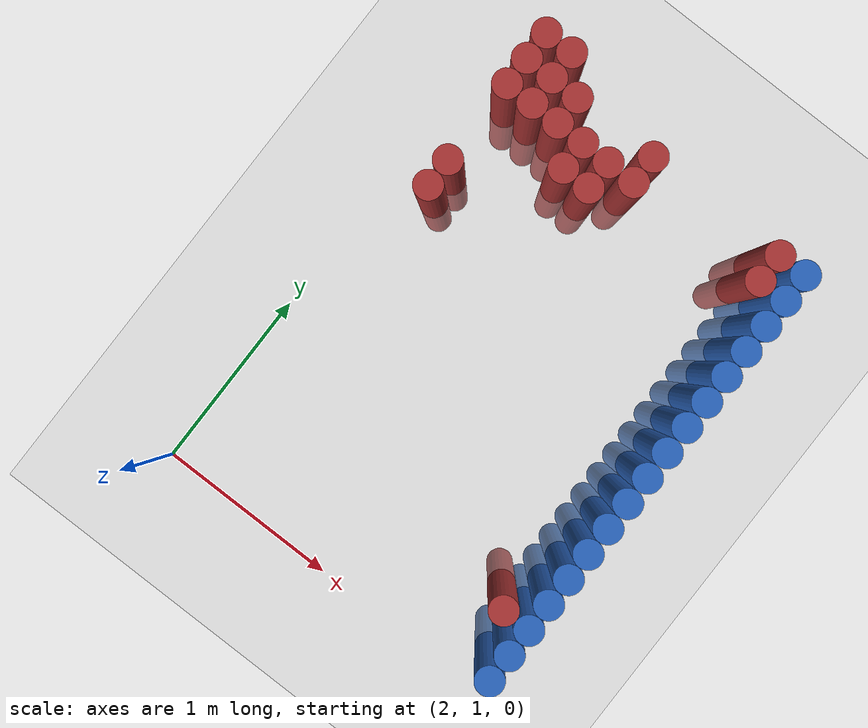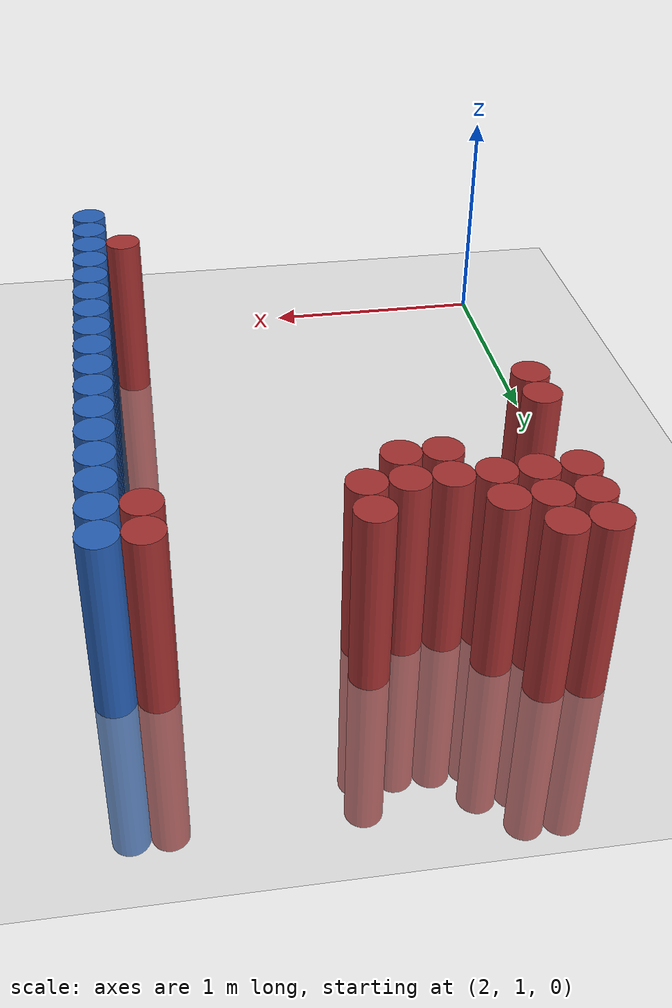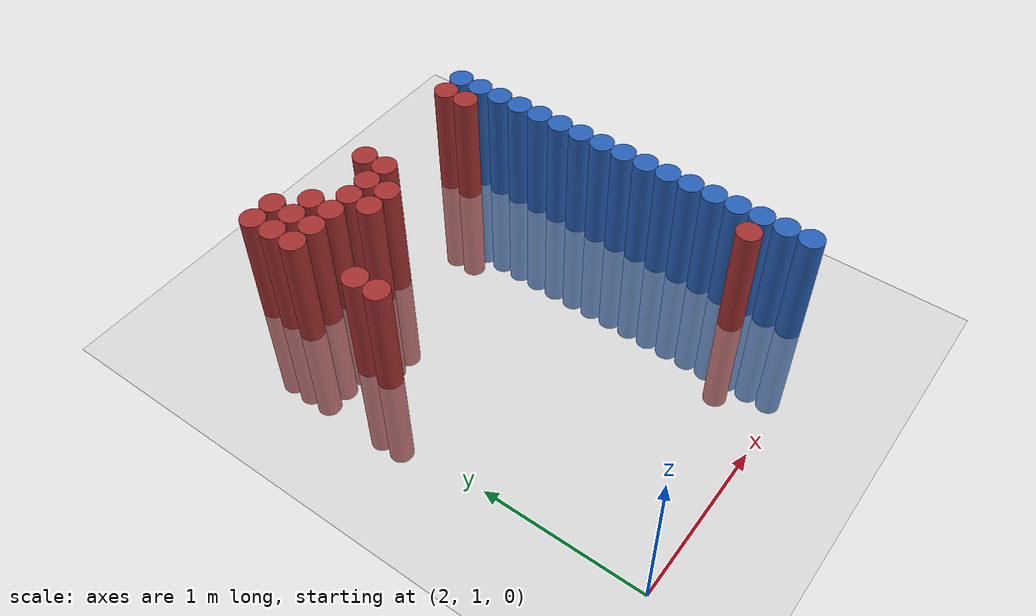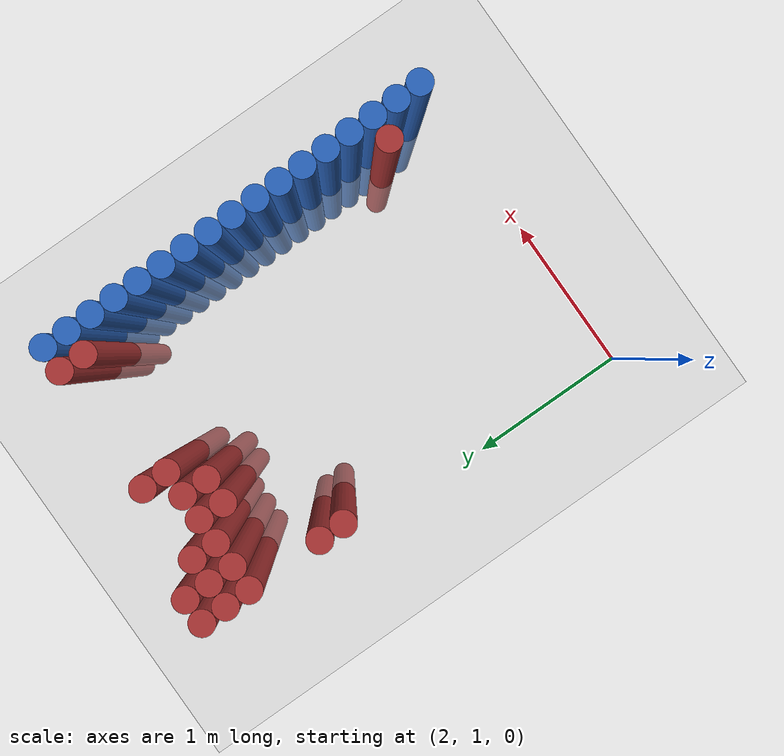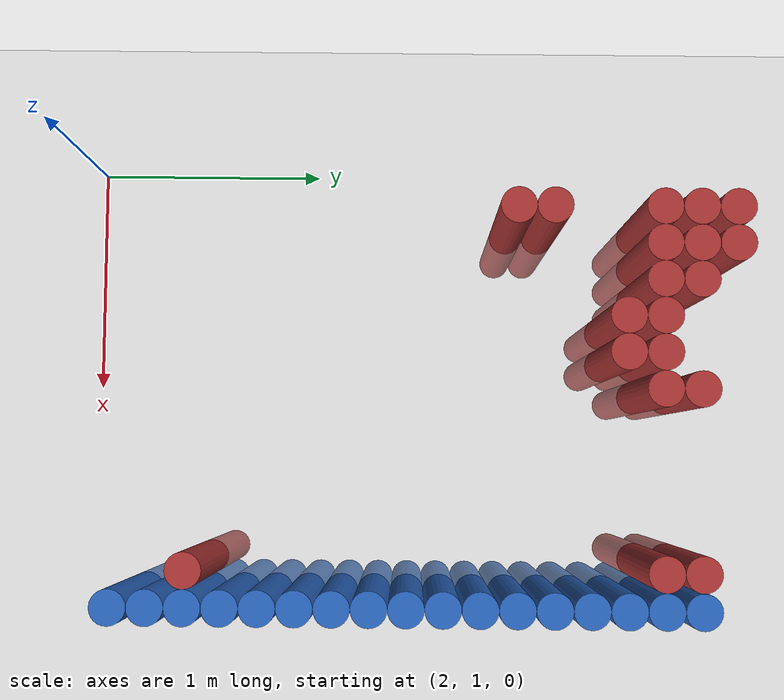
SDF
<sdf version="1.6">
 <world name="default">
  <model name="ground_plane">
   <static>1</static>
   <link name="link">
    <collision name="collision">
     <geometry><plane><normal>0 0 1</normal><size>100 100</size></plane></geometry>
     <surface><friction><ode><mu>100</mu><mu2>50</mu2></ode></friction></surface>
    </collision>
    <visual name="visual">
     <cast_shadows>0</cast_shadows>
     <geometry><plane><normal>0 0 1</normal><size>100 100</size></plane></geometry>
     <material>
      <script><uri>file://media/materials/scripts/gazebo.material</uri><name>Gazebo/Grey</name></script>
     </material>
    </visual>
   </link>
  </model>
  <model name="unit_cylinder_130">
   <static>1</static>
   <pose>3.925000 1.225000 0.000000 0.000000 0.000000 0.000000</pose>
   <link name="link">
    <inertial>
     <mass>1</mass>
     <inertia><ixx>0.145833</ixx><ixy>0</ixy><ixz>0</ixz><iyy>0.145833</iyy><iyz>0</iyz><izz>0.125</izz></inertia>
    </inertial>
    <collision name="collision">
     <geometry><cylinder><radius>0.075000</radius><length>1.5</length></cylinder></geometry>
    </collision>
    <visual name="visual">
     <geometry><cylinder><radius>0.075000</radius><length>1.5</length></cylinder></geometry>
     <material>
      <ambient>0.152000 0.379000 0.720000 1</ambient>
      <diffuse>0.152000 0.379000 0.720000 1</diffuse>
     </material>
     <material>
      <script><name>Gazebo/Grey</name><uri>file://media/materials/scripts/gazebo.material</uri></script>
     </material>
    </visual>
   </link>
  </model>
  <model name="unit_cylinder_132">
   <static>1</static>
   <pose>3.925000 1.375000 0.000000 0.000000 0.000000 0.000000</pose>
   <link name="link">
    <inertial>
     <mass>1</mass>
     <inertia><ixx>0.145833</ixx><ixy>0</ixy><ixz>0</ixz><iyy>0.145833</iyy><iyz>0</iyz><izz>0.125</izz></inertia>
    </inertial>
    <collision name="collision">
     <geometry><cylinder><radius>0.075000</radius><length>1.5</length></cylinder></geometry>
    </collision>
    <visual name="visual">
     <geometry><cylinder><radius>0.075000</radius><length>1.5</length></cylinder></geometry>
     <material>
      <ambient>0.152000 0.379000 0.720000 1</ambient>
      <diffuse>0.152000 0.379000 0.720000 1</diffuse>
     </material>
     <material>
      <script><name>Gazebo/Grey</name><uri>file://media/materials/scripts/gazebo.material</uri></script>
     </material>
    </visual>
   </link>
  </model>
  <model name="unit_cylinder_134">
   <static>1</static>
   <pose>3.925000 1.525000 0.000000 0.000000 0.000000 0.000000</pose>
   <link name="link">
    <inertial>
     <mass>1</mass>
     <inertia><ixx>0.145833</ixx><ixy>0</ixy><ixz>0</ixz><iyy>0.145833</iyy><iyz>0</iyz><izz>0.125</izz></inertia>
    </inertial>
    <collision name="collision">
     <geometry><cylinder><radius>0.075000</radius><length>1.5</length></cylinder></geometry>
    </collision>
    <visual name="visual">
     <geometry><cylinder><radius>0.075000</radius><length>1.5</length></cylinder></geometry>
     <material>
      <ambient>0.152000 0.379000 0.720000 1</ambient>
      <diffuse>0.152000 0.379000 0.720000 1</diffuse>
     </material>
     <material>
      <script><name>Gazebo/Grey</name><uri>file://media/materials/scripts/gazebo.material</uri></script>
     </material>
    </visual>
   </link>
  </model>
  <model name="unit_cylinder_136">
   <static>1</static>
   <pose>3.925000 1.675000 0.000000 0.000000 0.000000 0.000000</pose>
   <link name="link">
    <inertial>
     <mass>1</mass>
     <inertia><ixx>0.145833</ixx><ixy>0</ixy><ixz>0</ixz><iyy>0.145833</iyy><iyz>0</iyz><izz>0.125</izz></inertia>
    </inertial>
    <collision name="collision">
     <geometry><cylinder><radius>0.075000</radius><length>1.5</length></cylinder></geometry>
    </collision>
    <visual name="visual">
     <geometry><cylinder><radius>0.075000</radius><length>1.5</length></cylinder></geometry>
     <material>
      <ambient>0.152000 0.379000 0.720000 1</ambient>
      <diffuse>0.152000 0.379000 0.720000 1</diffuse>
     </material>
     <material>
      <script><name>Gazebo/Grey</name><uri>file://media/materials/scripts/gazebo.material</uri></script>
     </material>
    </visual>
   </link>
  </model>
  <model name="unit_cylinder_138">
   <static>1</static>
   <pose>3.925000 1.825000 0.000000 0.000000 0.000000 0.000000</pose>
   <link name="link">
    <inertial>
     <mass>1</mass>
     <inertia><ixx>0.145833</ixx><ixy>0</ixy><ixz>0</ixz><iyy>0.145833</iyy><iyz>0</iyz><izz>0.125</izz></inertia>
    </inertial>
    <collision name="collision">
     <geometry><cylinder><radius>0.075000</radius><length>1.5</length></cylinder></geometry>
    </collision>
    <visual name="visual">
     <geometry><cylinder><radius>0.075000</radius><length>1.5</length></cylinder></geometry>
     <material>
      <ambient>0.152000 0.379000 0.720000 1</ambient>
      <diffuse>0.152000 0.379000 0.720000 1</diffuse>
     </material>
     <material>
      <script><name>Gazebo/Grey</name><uri>file://media/materials/scripts/gazebo.material</uri></script>
     </material>
    </visual>
   </link>
  </model>
  <model name="unit_cylinder_140">
   <static>1</static>
   <pose>3.925000 1.975000 0.000000 0.000000 0.000000 0.000000</pose>
   <link name="link">
    <inertial>
     <mass>1</mass>
     <inertia><ixx>0.145833</ixx><ixy>0</ixy><ixz>0</ixz><iyy>0.145833</iyy><iyz>0</iyz><izz>0.125</izz></inertia>
    </inertial>
    <collision name="collision">
     <geometry><cylinder><radius>0.075000</radius><length>1.5</length></cylinder></geometry>
    </collision>
    <visual name="visual">
     <geometry><cylinder><radius>0.075000</radius><length>1.5</length></cylinder></geometry>
     <material>
      <ambient>0.152000 0.379000 0.720000 1</ambient>
      <diffuse>0.152000 0.379000 0.720000 1</diffuse>
     </material>
     <material>
      <script><name>Gazebo/Grey</name><uri>file://media/materials/scripts/gazebo.material</uri></script>
     </material>
    </visual>
   </link>
  </model>
  <model name="unit_cylinder_142">
   <static>1</static>
   <pose>3.925000 2.125000 0.000000 0.000000 0.000000 0.000000</pose>
   <link name="link">
    <inertial>
     <mass>1</mass>
     <inertia><ixx>0.145833</ixx><ixy>0</ixy><ixz>0</ixz><iyy>0.145833</iyy><iyz>0</iyz><izz>0.125</izz></inertia>
    </inertial>
    <collision name="collision">
     <geometry><cylinder><radius>0.075000</radius><length>1.5</length></cylinder></geometry>
    </collision>
    <visual name="visual">
     <geometry><cylinder><radius>0.075000</radius><length>1.5</length></cylinder></geometry>
     <material>
      <ambient>0.152000 0.379000 0.720000 1</ambient>
      <diffuse>0.152000 0.379000 0.720000 1</diffuse>
     </material>
     <material>
      <script><name>Gazebo/Grey</name><uri>file://media/materials/scripts/gazebo.material</uri></script>
     </material>
    </visual>
   </link>
  </model>
  <model name="unit_cylinder_144">
   <static>1</static>
   <pose>3.925000 2.275000 0.000000 0.000000 0.000000 0.000000</pose>
   <link name="link">
    <inertial>
     <mass>1</mass>
     <inertia><ixx>0.145833</ixx><ixy>0</ixy><ixz>0</ixz><iyy>0.145833</iyy><iyz>0</iyz><izz>0.125</izz></inertia>
    </inertial>
    <collision name="collision">
     <geometry><cylinder><radius>0.075000</radius><length>1.5</length></cylinder></geometry>
    </collision>
    <visual name="visual">
     <geometry><cylinder><radius>0.075000</radius><length>1.5</length></cylinder></geometry>
     <material>
      <ambient>0.152000 0.379000 0.720000 1</ambient>
      <diffuse>0.152000 0.379000 0.720000 1</diffuse>
     </material>
     <material>
      <script><name>Gazebo/Grey</name><uri>file://media/materials/scripts/gazebo.material</uri></script>
     </material>
    </visual>
   </link>
  </model>
  <model name="unit_cylinder_146">
   <static>1</static>
   <pose>3.925000 2.425000 0.000000 0.000000 0.000000 0.000000</pose>
   <link name="link">
    <inertial>
     <mass>1</mass>
     <inertia><ixx>0.145833</ixx><ixy>0</ixy><ixz>0</ixz><iyy>0.145833</iyy><iyz>0</iyz><izz>0.125</izz></inertia>
    </inertial>
    <collision name="collision">
     <geometry><cylinder><radius>0.075000</radius><length>1.5</length></cylinder></geometry>
    </collision>
    <visual name="visual">
     <geometry><cylinder><radius>0.075000</radius><length>1.5</length></cylinder></geometry>
     <material>
      <ambient>0.152000 0.379000 0.720000 1</ambient>
      <diffuse>0.152000 0.379000 0.720000 1</diffuse>
     </material>
     <material>
      <script><name>Gazebo/Grey</name><uri>file://media/materials/scripts/gazebo.material</uri></script>
     </material>
    </visual>
   </link>
  </model>
  <model name="unit_cylinder_148">
   <static>1</static>
   <pose>3.925000 2.575000 0.000000 0.000000 0.000000 0.000000</pose>
   <link name="link">
    <inertial>
     <mass>1</mass>
     <inertia><ixx>0.145833</ixx><ixy>0</ixy><ixz>0</ixz><iyy>0.145833</iyy><iyz>0</iyz><izz>0.125</izz></inertia>
    </inertial>
    <collision name="collision">
     <geometry><cylinder><radius>0.075000</radius><length>1.5</length></cylinder></geometry>
    </collision>
    <visual name="visual">
     <geometry><cylinder><radius>0.075000</radius><length>1.5</length></cylinder></geometry>
     <material>
      <ambient>0.152000 0.379000 0.720000 1</ambient>
      <diffuse>0.152000 0.379000 0.720000 1</diffuse>
     </material>
     <material>
      <script><name>Gazebo/Grey</name><uri>file://media/materials/scripts/gazebo.material</uri></script>
     </material>
    </visual>
   </link>
  </model>
  <model name="unit_cylinder_150">
   <static>1</static>
   <pose>3.925000 2.725000 0.000000 0.000000 0.000000 0.000000</pose>
   <link name="link">
    <inertial>
     <mass>1</mass>
     <inertia><ixx>0.145833</ixx><ixy>0</ixy><ixz>0</ixz><iyy>0.145833</iyy><iyz>0</iyz><izz>0.125</izz></inertia>
    </inertial>
    <collision name="collision">
     <geometry><cylinder><radius>0.075000</radius><length>1.5</length></cylinder></geometry>
    </collision>
    <visual name="visual">
     <geometry><cylinder><radius>0.075000</radius><length>1.5</length></cylinder></geometry>
     <material>
      <ambient>0.152000 0.379000 0.720000 1</ambient>
      <diffuse>0.152000 0.379000 0.720000 1</diffuse>
     </material>
     <material>
      <script><name>Gazebo/Grey</name><uri>file://media/materials/scripts/gazebo.material</uri></script>
     </material>
    </visual>
   </link>
  </model>
  <model name="unit_cylinder_152">
   <static>1</static>
   <pose>3.925000 2.875000 0.000000 0.000000 0.000000 0.000000</pose>
   <link name="link">
    <inertial>
     <mass>1</mass>
     <inertia><ixx>0.145833</ixx><ixy>0</ixy><ixz>0</ixz><iyy>0.145833</iyy><iyz>0</iyz><izz>0.125</izz></inertia>
    </inertial>
    <collision name="collision">
     <geometry><cylinder><radius>0.075000</radius><length>1.5</length></cylinder></geometry>
    </collision>
    <visual name="visual">
     <geometry><cylinder><radius>0.075000</radius><length>1.5</length></cylinder></geometry>
     <material>
      <ambient>0.152000 0.379000 0.720000 1</ambient>
      <diffuse>0.152000 0.379000 0.720000 1</diffuse>
     </material>
     <material>
      <script><name>Gazebo/Grey</name><uri>file://media/materials/scripts/gazebo.material</uri></script>
     </material>
    </visual>
   </link>
  </model>
  <model name="unit_cylinder_154">
   <static>1</static>
   <pose>3.925000 3.025000 0.000000 0.000000 0.000000 0.000000</pose>
   <link name="link">
    <inertial>
     <mass>1</mass>
     <inertia><ixx>0.145833</ixx><ixy>0</ixy><ixz>0</ixz><iyy>0.145833</iyy><iyz>0</iyz><izz>0.125</izz></inertia>
    </inertial>
    <collision name="collision">
     <geometry><cylinder><radius>0.075000</radius><length>1.5</length></cylinder></geometry>
    </collision>
    <visual name="visual">
     <geometry><cylinder><radius>0.075000</radius><length>1.5</length></cylinder></geometry>
     <material>
      <ambient>0.152000 0.379000 0.720000 1</ambient>
      <diffuse>0.152000 0.379000 0.720000 1</diffuse>
     </material>
     <material>
      <script><name>Gazebo/Grey</name><uri>file://media/materials/scripts/gazebo.material</uri></script>
     </material>
    </visual>
   </link>
  </model>
  <model name="unit_cylinder_156">
   <static>1</static>
   <pose>3.925000 3.175000 0.000000 0.000000 0.000000 0.000000</pose>
   <link name="link">
    <inertial>
     <mass>1</mass>
     <inertia><ixx>0.145833</ixx><ixy>0</ixy><ixz>0</ixz><iyy>0.145833</iyy><iyz>0</iyz><izz>0.125</izz></inertia>
    </inertial>
    <collision name="collision">
     <geometry><cylinder><radius>0.075000</radius><length>1.5</length></cylinder></geometry>
    </collision>
    <visual name="visual">
     <geometry><cylinder><radius>0.075000</radius><length>1.5</length></cylinder></geometry>
     <material>
      <ambient>0.152000 0.379000 0.720000 1</ambient>
      <diffuse>0.152000 0.379000 0.720000 1</diffuse>
     </material>
     <material>
      <script><name>Gazebo/Grey</name><uri>file://media/materials/scripts/gazebo.material</uri></script>
     </material>
    </visual>
   </link>
  </model>
  <model name="unit_cylinder_158">
   <static>1</static>
   <pose>3.925000 3.325000 0.000000 0.000000 0.000000 0.000000</pose>
   <link name="link">
    <inertial>
     <mass>1</mass>
     <inertia><ixx>0.145833</ixx><ixy>0</ixy><ixz>0</ixz><iyy>0.145833</iyy><iyz>0</iyz><izz>0.125</izz></inertia>
    </inertial>
    <collision name="collision">
     <geometry><cylinder><radius>0.075000</radius><length>1.5</length></cylinder></geometry>
    </collision>
    <visual name="visual">
     <geometry><cylinder><radius>0.075000</radius><length>1.5</length></cylinder></geometry>
     <material>
      <ambient>0.152000 0.379000 0.720000 1</ambient>
      <diffuse>0.152000 0.379000 0.720000 1</diffuse>
     </material>
     <material>
      <script><name>Gazebo/Grey</name><uri>file://media/materials/scripts/gazebo.material</uri></script>
     </material>
    </visual>
   </link>
  </model>
  <model name="unit_cylinder_160">
   <static>1</static>
   <pose>3.925000 3.475000 0.000000 0.000000 0.000000 0.000000</pose>
   <link name="link">
    <inertial>
     <mass>1</mass>
     <inertia><ixx>0.145833</ixx><ixy>0</ixy><ixz>0</ixz><iyy>0.145833</iyy><iyz>0</iyz><izz>0.125</izz></inertia>
    </inertial>
    <collision name="collision">
     <geometry><cylinder><radius>0.075000</radius><length>1.5</length></cylinder></geometry>
    </collision>
    <visual name="visual">
     <geometry><cylinder><radius>0.075000</radius><length>1.5</length></cylinder></geometry>
     <material>
      <ambient>0.152000 0.379000 0.720000 1</ambient>
      <diffuse>0.152000 0.379000 0.720000 1</diffuse>
     </material>
     <material>
      <script><name>Gazebo/Grey</name><uri>file://media/materials/scripts/gazebo.material</uri></script>
     </material>
    </visual>
   </link>
  </model>
  <model name="unit_cylinder_162">
   <static>1</static>
   <pose>3.925000 3.625000 0.000000 0.000000 0.000000 0.000000</pose>
   <link name="link">
    <inertial>
     <mass>1</mass>
     <inertia><ixx>0.145833</ixx><ixy>0</ixy><ixz>0</ixz><iyy>0.145833</iyy><iyz>0</iyz><izz>0.125</izz></inertia>
    </inertial>
    <collision name="collision">
     <geometry><cylinder><radius>0.075000</radius><length>1.5</length></cylinder></geometry>
    </collision>
    <visual name="visual">
     <geometry><cylinder><radius>0.075000</radius><length>1.5</length></cylinder></geometry>
     <material>
      <ambient>0.152000 0.379000 0.720000 1</ambient>
      <diffuse>0.152000 0.379000 0.720000 1</diffuse>
     </material>
     <material>
      <script><name>Gazebo/Grey</name><uri>file://media/materials/scripts/gazebo.material</uri></script>
     </material>
    </visual>
   </link>
  </model>
  <model name="unit_cylinder_428">
   <static>1</static>
   <pose>2.275000 2.875000 0.000000 0.000000 0.000000 0.000000</pose>
   <link name="link">
    <inertial>
     <mass>1</mass>
     <inertia><ixx>0.145833</ixx><ixy>0</ixy><ixz>0</ixz><iyy>0.145833</iyy><iyz>0</iyz><izz>0.125</izz></inertia>
    </inertial>
    <collision name="collision">
     <geometry><cylinder><radius>0.075000</radius><length>1.5</length></cylinder></geometry>
    </collision>
    <visual name="visual">
     <geometry><cylinder><radius>0.075000</radius><length>1.5</length></cylinder></geometry>
     <material>
      <ambient>0.648000 0.192000 0.192000 1</ambient>
      <diffuse>0.648000 0.192000 0.192000 1</diffuse>
     </material>
     <material>
      <script><name>Gazebo/Grey</name><uri>file://media/materials/scripts/gazebo.material</uri></script>
     </material>
    </visual>
   </link>
  </model>
  <model name="unit_cylinder_429">
   <static>1</static>
   <pose>2.275000 3.025000 0.000000 0.000000 0.000000 0.000000</pose>
   <link name="link">
    <inertial>
     <mass>1</mass>
     <inertia><ixx>0.145833</ixx><ixy>0</ixy><ixz>0</ixz><iyy>0.145833</iyy><iyz>0</iyz><izz>0.125</izz></inertia>
    </inertial>
    <collision name="collision">
     <geometry><cylinder><radius>0.075000</radius><length>1.5</length></cylinder></geometry>
    </collision>
    <visual name="visual">
     <geometry><cylinder><radius>0.075000</radius><length>1.5</length></cylinder></geometry>
     <material>
      <ambient>0.648000 0.192000 0.192000 1</ambient>
      <diffuse>0.648000 0.192000 0.192000 1</diffuse>
     </material>
     <material>
      <script><name>Gazebo/Grey</name><uri>file://media/materials/scripts/gazebo.material</uri></script>
     </material>
    </visual>
   </link>
  </model>
  <model name="unit_cylinder_430">
   <static>1</static>
   <pose>2.275000 3.475000 0.000000 0.000000 0.000000 0.000000</pose>
   <link name="link">
    <inertial>
     <mass>1</mass>
     <inertia><ixx>0.145833</ixx><ixy>0</ixy><ixz>0</ixz><iyy>0.145833</iyy><iyz>0</iyz><izz>0.125</izz></inertia>
    </inertial>
    <collision name="collision">
     <geometry><cylinder><radius>0.075000</radius><length>1.5</length></cylinder></geometry>
    </collision>
    <visual name="visual">
     <geometry><cylinder><radius>0.075000</radius><length>1.5</length></cylinder></geometry>
     <material>
      <ambient>0.648000 0.192000 0.192000 1</ambient>
      <diffuse>0.648000 0.192000 0.192000 1</diffuse>
     </material>
     <material>
      <script><name>Gazebo/Grey</name><uri>file://media/materials/scripts/gazebo.material</uri></script>
     </material>
    </visual>
   </link>
  </model>
  <model name="unit_cylinder_431">
   <static>1</static>
   <pose>2.275000 3.625000 0.000000 0.000000 0.000000 0.000000</pose>
   <link name="link">
    <inertial>
     <mass>1</mass>
     <inertia><ixx>0.145833</ixx><ixy>0</ixy><ixz>0</ixz><iyy>0.145833</iyy><iyz>0</iyz><izz>0.125</izz></inertia>
    </inertial>
    <collision name="collision">
     <geometry><cylinder><radius>0.075000</radius><length>1.5</length></cylinder></geometry>
    </collision>
    <visual name="visual">
     <geometry><cylinder><radius>0.075000</radius><length>1.5</length></cylinder></geometry>
     <material>
      <ambient>0.648000 0.192000 0.192000 1</ambient>
      <diffuse>0.648000 0.192000 0.192000 1</diffuse>
     </material>
     <material>
      <script><name>Gazebo/Grey</name><uri>file://media/materials/scripts/gazebo.material</uri></script>
     </material>
    </visual>
   </link>
  </model>
  <model name="unit_cylinder_432">
   <static>1</static>
   <pose>2.275000 3.775000 0.000000 0.000000 0.000000 0.000000</pose>
   <link name="link">
    <inertial>
     <mass>1</mass>
     <inertia><ixx>0.145833</ixx><ixy>0</ixy><ixz>0</ixz><iyy>0.145833</iyy><iyz>0</iyz><izz>0.125</izz></inertia>
    </inertial>
    <collision name="collision">
     <geometry><cylinder><radius>0.075000</radius><length>1.5</length></cylinder></geometry>
    </collision>
    <visual name="visual">
     <geometry><cylinder><radius>0.075000</radius><length>1.5</length></cylinder></geometry>
     <material>
      <ambient>0.648000 0.192000 0.192000 1</ambient>
      <diffuse>0.648000 0.192000 0.192000 1</diffuse>
     </material>
     <material>
      <script><name>Gazebo/Grey</name><uri>file://media/materials/scripts/gazebo.material</uri></script>
     </material>
    </visual>
   </link>
  </model>
  <model name="unit_cylinder_434">
   <static>1</static>
   <pose>2.425000 3.475000 0.000000 0.000000 0.000000 0.000000</pose>
   <link name="link">
    <inertial>
     <mass>1</mass>
     <inertia><ixx>0.145833</ixx><ixy>0</ixy><ixz>0</ixz><iyy>0.145833</iyy><iyz>0</iyz><izz>0.125</izz></inertia>
    </inertial>
    <collision name="collision">
     <geometry><cylinder><radius>0.075000</radius><length>1.5</length></cylinder></geometry>
    </collision>
    <visual name="visual">
     <geometry><cylinder><radius>0.075000</radius><length>1.5</length></cylinder></geometry>
     <material>
      <ambient>0.648000 0.192000 0.192000 1</ambient>
      <diffuse>0.648000 0.192000 0.192000 1</diffuse>
     </material>
     <material>
      <script><name>Gazebo/Grey</name><uri>file://media/materials/scripts/gazebo.material</uri></script>
     </material>
    </visual>
   </link>
  </model>
  <model name="unit_cylinder_435">
   <static>1</static>
   <pose>2.425000 3.625000 0.000000 0.000000 0.000000 0.000000</pose>
   <link name="link">
    <inertial>
     <mass>1</mass>
     <inertia><ixx>0.145833</ixx><ixy>0</ixy><ixz>0</ixz><iyy>0.145833</iyy><iyz>0</iyz><izz>0.125</izz></inertia>
    </inertial>
    <collision name="collision">
     <geometry><cylinder><radius>0.075000</radius><length>1.5</length></cylinder></geometry>
    </collision>
    <visual name="visual">
     <geometry><cylinder><radius>0.075000</radius><length>1.5</length></cylinder></geometry>
     <material>
      <ambient>0.648000 0.192000 0.192000 1</ambient>
      <diffuse>0.648000 0.192000 0.192000 1</diffuse>
     </material>
     <material>
      <script><name>Gazebo/Grey</name><uri>file://media/materials/scripts/gazebo.material</uri></script>
     </material>
    </visual>
   </link>
  </model>
  <model name="unit_cylinder_436">
   <static>1</static>
   <pose>2.425000 3.775000 0.000000 0.000000 0.000000 0.000000</pose>
   <link name="link">
    <inertial>
     <mass>1</mass>
     <inertia><ixx>0.145833</ixx><ixy>0</ixy><ixz>0</ixz><iyy>0.145833</iyy><iyz>0</iyz><izz>0.125</izz></inertia>
    </inertial>
    <collision name="collision">
     <geometry><cylinder><radius>0.075000</radius><length>1.5</length></cylinder></geometry>
    </collision>
    <visual name="visual">
     <geometry><cylinder><radius>0.075000</radius><length>1.5</length></cylinder></geometry>
     <material>
      <ambient>0.648000 0.192000 0.192000 1</ambient>
      <diffuse>0.648000 0.192000 0.192000 1</diffuse>
     </material>
     <material>
      <script><name>Gazebo/Grey</name><uri>file://media/materials/scripts/gazebo.material</uri></script>
     </material>
    </visual>
   </link>
  </model>
  <model name="unit_cylinder_437">
   <static>1</static>
   <pose>2.575000 3.475000 0.000000 0.000000 0.000000 0.000000</pose>
   <link name="link">
    <inertial>
     <mass>1</mass>
     <inertia><ixx>0.145833</ixx><ixy>0</ixy><ixz>0</ixz><iyy>0.145833</iyy><iyz>0</iyz><izz>0.125</izz></inertia>
    </inertial>
    <collision name="collision">
     <geometry><cylinder><radius>0.075000</radius><length>1.5</length></cylinder></geometry>
    </collision>
    <visual name="visual">
     <geometry><cylinder><radius>0.075000</radius><length>1.5</length></cylinder></geometry>
     <material>
      <ambient>0.648000 0.192000 0.192000 1</ambient>
      <diffuse>0.648000 0.192000 0.192000 1</diffuse>
     </material>
     <material>
      <script><name>Gazebo/Grey</name><uri>file://media/materials/scripts/gazebo.material</uri></script>
     </material>
    </visual>
   </link>
  </model>
  <model name="unit_cylinder_438">
   <static>1</static>
   <pose>2.575000 3.625000 0.000000 0.000000 0.000000 0.000000</pose>
   <link name="link">
    <inertial>
     <mass>1</mass>
     <inertia><ixx>0.145833</ixx><ixy>0</ixy><ixz>0</ixz><iyy>0.145833</iyy><iyz>0</iyz><izz>0.125</izz></inertia>
    </inertial>
    <collision name="collision">
     <geometry><cylinder><radius>0.075000</radius><length>1.5</length></cylinder></geometry>
    </collision>
    <visual name="visual">
     <geometry><cylinder><radius>0.075000</radius><length>1.5</length></cylinder></geometry>
     <material>
      <ambient>0.648000 0.192000 0.192000 1</ambient>
      <diffuse>0.648000 0.192000 0.192000 1</diffuse>
     </material>
     <material>
      <script><name>Gazebo/Grey</name><uri>file://media/materials/scripts/gazebo.material</uri></script>
     </material>
    </visual>
   </link>
  </model>
  <model name="unit_cylinder_439">
   <static>1</static>
   <pose>2.725000 3.325000 0.000000 0.000000 0.000000 0.000000</pose>
   <link name="link">
    <inertial>
     <mass>1</mass>
     <inertia><ixx>0.145833</ixx><ixy>0</ixy><ixz>0</ixz><iyy>0.145833</iyy><iyz>0</iyz><izz>0.125</izz></inertia>
    </inertial>
    <collision name="collision">
     <geometry><cylinder><radius>0.075000</radius><length>1.5</length></cylinder></geometry>
    </collision>
    <visual name="visual">
     <geometry><cylinder><radius>0.075000</radius><length>1.5</length></cylinder></geometry>
     <material>
      <ambient>0.648000 0.192000 0.192000 1</ambient>
      <diffuse>0.648000 0.192000 0.192000 1</diffuse>
     </material>
     <material>
      <script><name>Gazebo/Grey</name><uri>file://media/materials/scripts/gazebo.material</uri></script>
     </material>
    </visual>
   </link>
  </model>
  <model name="unit_cylinder_440">
   <static>1</static>
   <pose>2.725000 3.475000 0.000000 0.000000 0.000000 0.000000</pose>
   <link name="link">
    <inertial>
     <mass>1</mass>
     <inertia><ixx>0.145833</ixx><ixy>0</ixy><ixz>0</ixz><iyy>0.145833</iyy><iyz>0</iyz><izz>0.125</izz></inertia>
    </inertial>
    <collision name="collision">
     <geometry><cylinder><radius>0.075000</radius><length>1.5</length></cylinder></geometry>
    </collision>
    <visual name="visual">
     <geometry><cylinder><radius>0.075000</radius><length>1.5</length></cylinder></geometry>
     <material>
      <ambient>0.648000 0.192000 0.192000 1</ambient>
      <diffuse>0.648000 0.192000 0.192000 1</diffuse>
     </material>
     <material>
      <script><name>Gazebo/Grey</name><uri>file://media/materials/scripts/gazebo.material</uri></script>
     </material>
    </visual>
   </link>
  </model>
  <model name="unit_cylinder_441">
   <static>1</static>
   <pose>2.875000 3.325000 0.000000 0.000000 0.000000 0.000000</pose>
   <link name="link">
    <inertial>
     <mass>1</mass>
     <inertia><ixx>0.145833</ixx><ixy>0</ixy><ixz>0</ixz><iyy>0.145833</iyy><iyz>0</iyz><izz>0.125</izz></inertia>
    </inertial>
    <collision name="collision">
     <geometry><cylinder><radius>0.075000</radius><length>1.5</length></cylinder></geometry>
    </collision>
    <visual name="visual">
     <geometry><cylinder><radius>0.075000</radius><length>1.5</length></cylinder></geometry>
     <material>
      <ambient>0.648000 0.192000 0.192000 1</ambient>
      <diffuse>0.648000 0.192000 0.192000 1</diffuse>
     </material>
     <material>
      <script><name>Gazebo/Grey</name><uri>file://media/materials/scripts/gazebo.material</uri></script>
     </material>
    </visual>
   </link>
  </model>
  <model name="unit_cylinder_442">
   <static>1</static>
   <pose>2.875000 3.475000 0.000000 0.000000 0.000000 0.000000</pose>
   <link name="link">
    <inertial>
     <mass>1</mass>
     <inertia><ixx>0.145833</ixx><ixy>0</ixy><ixz>0</ixz><iyy>0.145833</iyy><iyz>0</iyz><izz>0.125</izz></inertia>
    </inertial>
    <collision name="collision">
     <geometry><cylinder><radius>0.075000</radius><length>1.5</length></cylinder></geometry>
    </collision>
    <visual name="visual">
     <geometry><cylinder><radius>0.075000</radius><length>1.5</length></cylinder></geometry>
     <material>
      <ambient>0.648000 0.192000 0.192000 1</ambient>
      <diffuse>0.648000 0.192000 0.192000 1</diffuse>
     </material>
     <material>
      <script><name>Gazebo/Grey</name><uri>file://media/materials/scripts/gazebo.material</uri></script>
     </material>
    </visual>
   </link>
  </model>
  <model name="unit_cylinder_445">
   <static>1</static>
   <pose>3.025000 3.475000 0.000000 0.000000 0.000000 0.000000</pose>
   <link name="link">
    <inertial>
     <mass>1</mass>
     <inertia><ixx>0.145833</ixx><ixy>0</ixy><ixz>0</ixz><iyy>0.145833</iyy><iyz>0</iyz><izz>0.125</izz></inertia>
    </inertial>
    <collision name="collision">
     <geometry><cylinder><radius>0.075000</radius><length>1.5</length></cylinder></geometry>
    </collision>
    <visual name="visual">
     <geometry><cylinder><radius>0.075000</radius><length>1.5</length></cylinder></geometry>
     <material>
      <ambient>0.648000 0.192000 0.192000 1</ambient>
      <diffuse>0.648000 0.192000 0.192000 1</diffuse>
     </material>
     <material>
      <script><name>Gazebo/Grey</name><uri>file://media/materials/scripts/gazebo.material</uri></script>
     </material>
    </visual>
   </link>
  </model>
  <model name="unit_cylinder_446">
   <static>1</static>
   <pose>3.025000 3.625000 0.000000 0.000000 0.000000 0.000000</pose>
   <link name="link">
    <inertial>
     <mass>1</mass>
     <inertia><ixx>0.145833</ixx><ixy>0</ixy><ixz>0</ixz><iyy>0.145833</iyy><iyz>0</iyz><izz>0.125</izz></inertia>
    </inertial>
    <collision name="collision">
     <geometry><cylinder><radius>0.075000</radius><length>1.5</length></cylinder></geometry>
    </collision>
    <visual name="visual">
     <geometry><cylinder><radius>0.075000</radius><length>1.5</length></cylinder></geometry>
     <material>
      <ambient>0.648000 0.192000 0.192000 1</ambient>
      <diffuse>0.648000 0.192000 0.192000 1</diffuse>
     </material>
     <material>
      <script><name>Gazebo/Grey</name><uri>file://media/materials/scripts/gazebo.material</uri></script>
     </material>
    </visual>
   </link>
  </model>
  <model name="unit_cylinder_470">
   <static>1</static>
   <pose>3.775000 1.525000 0.000000 0.000000 0.000000 0.000000</pose>
   <link name="link">
    <inertial>
     <mass>1</mass>
     <inertia><ixx>0.145833</ixx><ixy>0</ixy><ixz>0</ixz><iyy>0.145833</iyy><iyz>0</iyz><izz>0.125</izz></inertia>
    </inertial>
    <collision name="collision">
     <geometry><cylinder><radius>0.075000</radius><length>1.5</length></cylinder></geometry>
    </collision>
    <visual name="visual">
     <geometry><cylinder><radius>0.075000</radius><length>1.5</length></cylinder></geometry>
     <material>
      <ambient>0.648000 0.192000 0.192000 1</ambient>
      <diffuse>0.648000 0.192000 0.192000 1</diffuse>
     </material>
     <material>
      <script><name>Gazebo/Grey</name><uri>file://media/materials/scripts/gazebo.material</uri></script>
     </material>
    </visual>
   </link>
  </model>
  <model name="unit_cylinder_471">
   <static>1</static>
   <pose>3.775000 3.475000 0.000000 0.000000 0.000000 0.000000</pose>
   <link name="link">
    <inertial>
     <mass>1</mass>
     <inertia><ixx>0.145833</ixx><ixy>0</ixy><ixz>0</ixz><iyy>0.145833</iyy><iyz>0</iyz><izz>0.125</izz></inertia>
    </inertial>
    <collision name="collision">
     <geometry><cylinder><radius>0.075000</radius><length>1.5</length></cylinder></geometry>
    </collision>
    <visual name="visual">
     <geometry><cylinder><radius>0.075000</radius><length>1.5</length></cylinder></geometry>
     <material>
      <ambient>0.648000 0.192000 0.192000 1</ambient>
      <diffuse>0.648000 0.192000 0.192000 1</diffuse>
     </material>
     <material>
      <script><name>Gazebo/Grey</name><uri>file://media/materials/scripts/gazebo.material</uri></script>
     </material>
    </visual>
   </link>
  </model>
  <model name="unit_cylinder_472">
   <static>1</static>
   <pose>3.775000 3.625000 0.000000 0.000000 0.000000 0.000000</pose>
   <link name="link">
    <inertial>
     <mass>1</mass>
     <inertia><ixx>0.145833</ixx><ixy>0</ixy><ixz>0</ixz><iyy>0.145833</iyy><iyz>0</iyz><izz>0.125</izz></inertia>
    </inertial>
    <collision name="collision">
     <geometry><cylinder><radius>0.075000</radius><length>1.5</length></cylinder></geometry>
    </collision>
    <visual name="visual">
     <geometry><cylinder><radius>0.075000</radius><length>1.5</length></cylinder></geometry>
     <material>
      <ambient>0.648000 0.192000 0.192000 1</ambient>
      <diffuse>0.648000 0.192000 0.192000 1</diffuse>
     </material>
     <material>
      <script><name>Gazebo/Grey</name><uri>file://media/materials/scripts/gazebo.material</uri></script>
     </material>
    </visual>
   </link>
  </model>
  <model name="unit_cylinder_502">
   <static>1</static>
   <pose>3.925000 1.225000 0.000000 0.000000 0.000000 0.000000</pose>
   <link name="link">
    <inertial>
     <mass>1</mass>
     <inertia><ixx>0.145833</ixx><ixy>0</ixy><ixz>0</ixz><iyy>0.145833</iyy><iyz>0</iyz><izz>0.125</izz></inertia>
    </inertial>
    <collision name="collision">
     <geometry><cylinder><radius>0.075000</radius><length>1.5</length></cylinder></geometry>
    </collision>
    <visual name="visual">
     <geometry><cylinder><radius>0.075000</radius><length>1.5</length></cylinder></geometry>
     <material>
      <ambient>0.152000 0.379000 0.720000 1</ambient>
      <diffuse>0.152000 0.379000 0.720000 1</diffuse>
     </material>
     <material>
      <script><name>Gazebo/Grey</name><uri>file://media/materials/scripts/gazebo.material</uri></script>
     </material>
    </visual>
   </link>
  </model>
  <model name="unit_cylinder_503">
   <static>1</static>
   <pose>3.925000 1.375000 0.000000 0.000000 0.000000 0.000000</pose>
   <link name="link">
    <inertial>
     <mass>1</mass>
     <inertia><ixx>0.145833</ixx><ixy>0</ixy><ixz>0</ixz><iyy>0.145833</iyy><iyz>0</iyz><izz>0.125</izz></inertia>
    </inertial>
    <collision name="collision">
     <geometry><cylinder><radius>0.075000</radius><length>1.5</length></cylinder></geometry>
    </collision>
    <visual name="visual">
     <geometry><cylinder><radius>0.075000</radius><length>1.5</length></cylinder></geometry>
     <material>
      <ambient>0.152000 0.379000 0.720000 1</ambient>
      <diffuse>0.152000 0.379000 0.720000 1</diffuse>
     </material>
     <material>
      <script><name>Gazebo/Grey</name><uri>file://media/materials/scripts/gazebo.material</uri></script>
     </material>
    </visual>
   </link>
  </model>
  <model name="unit_cylinder_504">
   <static>1</static>
   <pose>3.925000 1.525000 0.000000 0.000000 0.000000 0.000000</pose>
   <link name="link">
    <inertial>
     <mass>1</mass>
     <inertia><ixx>0.145833</ixx><ixy>0</ixy><ixz>0</ixz><iyy>0.145833</iyy><iyz>0</iyz><izz>0.125</izz></inertia>
    </inertial>
    <collision name="collision">
     <geometry><cylinder><radius>0.075000</radius><length>1.5</length></cylinder></geometry>
    </collision>
    <visual name="visual">
     <geometry><cylinder><radius>0.075000</radius><length>1.5</length></cylinder></geometry>
     <material>
      <ambient>0.152000 0.379000 0.720000 1</ambient>
      <diffuse>0.152000 0.379000 0.720000 1</diffuse>
     </material>
     <material>
      <script><name>Gazebo/Grey</name><uri>file://media/materials/scripts/gazebo.material</uri></script>
     </material>
    </visual>
   </link>
  </model>
  <model name="unit_cylinder_505">
   <static>1</static>
   <pose>3.925000 1.675000 0.000000 0.000000 0.000000 0.000000</pose>
   <link name="link">
    <inertial>
     <mass>1</mass>
     <inertia><ixx>0.145833</ixx><ixy>0</ixy><ixz>0</ixz><iyy>0.145833</iyy><iyz>0</iyz><izz>0.125</izz></inertia>
    </inertial>
    <collision name="collision">
     <geometry><cylinder><radius>0.075000</radius><length>1.5</length></cylinder></geometry>
    </collision>
    <visual name="visual">
     <geometry><cylinder><radius>0.075000</radius><length>1.5</length></cylinder></geometry>
     <material>
      <ambient>0.152000 0.379000 0.720000 1</ambient>
      <diffuse>0.152000 0.379000 0.720000 1</diffuse>
     </material>
     <material>
      <script><name>Gazebo/Grey</name><uri>file://media/materials/scripts/gazebo.material</uri></script>
     </material>
    </visual>
   </link>
  </model>
  <model name="unit_cylinder_506">
   <static>1</static>
   <pose>3.925000 1.825000 0.000000 0.000000 0.000000 0.000000</pose>
   <link name="link">
    <inertial>
     <mass>1</mass>
     <inertia><ixx>0.145833</ixx><ixy>0</ixy><ixz>0</ixz><iyy>0.145833</iyy><iyz>0</iyz><izz>0.125</izz></inertia>
    </inertial>
    <collision name="collision">
     <geometry><cylinder><radius>0.075000</radius><length>1.5</length></cylinder></geometry>
    </collision>
    <visual name="visual">
     <geometry><cylinder><radius>0.075000</radius><length>1.5</length></cylinder></geometry>
     <material>
      <ambient>0.152000 0.379000 0.720000 1</ambient>
      <diffuse>0.152000 0.379000 0.720000 1</diffuse>
     </material>
     <material>
      <script><name>Gazebo/Grey</name><uri>file://media/materials/scripts/gazebo.material</uri></script>
     </material>
    </visual>
   </link>
  </model>
  <model name="unit_cylinder_507">
   <static>1</static>
   <pose>3.925000 1.975000 0.000000 0.000000 0.000000 0.000000</pose>
   <link name="link">
    <inertial>
     <mass>1</mass>
     <inertia><ixx>0.145833</ixx><ixy>0</ixy><ixz>0</ixz><iyy>0.145833</iyy><iyz>0</iyz><izz>0.125</izz></inertia>
    </inertial>
    <collision name="collision">
     <geometry><cylinder><radius>0.075000</radius><length>1.5</length></cylinder></geometry>
    </collision>
    <visual name="visual">
     <geometry><cylinder><radius>0.075000</radius><length>1.5</length></cylinder></geometry>
     <material>
      <ambient>0.152000 0.379000 0.720000 1</ambient>
      <diffuse>0.152000 0.379000 0.720000 1</diffuse>
     </material>
     <material>
      <script><name>Gazebo/Grey</name><uri>file://media/materials/scripts/gazebo.material</uri></script>
     </material>
    </visual>
   </link>
  </model>
  <model name="unit_cylinder_508">
   <static>1</static>
   <pose>3.925000 2.125000 0.000000 0.000000 0.000000 0.000000</pose>
   <link name="link">
    <inertial>
     <mass>1</mass>
     <inertia><ixx>0.145833</ixx><ixy>0</ixy><ixz>0</ixz><iyy>0.145833</iyy><iyz>0</iyz><izz>0.125</izz></inertia>
    </inertial>
    <collision name="collision">
     <geometry><cylinder><radius>0.075000</radius><length>1.5</length></cylinder></geometry>
    </collision>
    <visual name="visual">
     <geometry><cylinder><radius>0.075000</radius><length>1.5</length></cylinder></geometry>
     <material>
      <ambient>0.152000 0.379000 0.720000 1</ambient>
      <diffuse>0.152000 0.379000 0.720000 1</diffuse>
     </material>
     <material>
      <script><name>Gazebo/Grey</name><uri>file://media/materials/scripts/gazebo.material</uri></script>
     </material>
    </visual>
   </link>
  </model>
  <model name="unit_cylinder_509">
   <static>1</static>
   <pose>3.925000 2.275000 0.000000 0.000000 0.000000 0.000000</pose>
   <link name="link">
    <inertial>
     <mass>1</mass>
     <inertia><ixx>0.145833</ixx><ixy>0</ixy><ixz>0</ixz><iyy>0.145833</iyy><iyz>0</iyz><izz>0.125</izz></inertia>
    </inertial>
    <collision name="collision">
     <geometry><cylinder><radius>0.075000</radius><length>1.5</length></cylinder></geometry>
    </collision>
    <visual name="visual">
     <geometry><cylinder><radius>0.075000</radius><length>1.5</length></cylinder></geometry>
     <material>
      <ambient>0.152000 0.379000 0.720000 1</ambient>
      <diffuse>0.152000 0.379000 0.720000 1</diffuse>
     </material>
     <material>
      <script><name>Gazebo/Grey</name><uri>file://media/materials/scripts/gazebo.material</uri></script>
     </material>
    </visual>
   </link>
  </model>
  <model name="unit_cylinder_510">
   <static>1</static>
   <pose>3.925000 2.425000 0.000000 0.000000 0.000000 0.000000</pose>
   <link name="link">
    <inertial>
     <mass>1</mass>
     <inertia><ixx>0.145833</ixx><ixy>0</ixy><ixz>0</ixz><iyy>0.145833</iyy><iyz>0</iyz><izz>0.125</izz></inertia>
    </inertial>
    <collision name="collision">
     <geometry><cylinder><radius>0.075000</radius><length>1.5</length></cylinder></geometry>
    </collision>
    <visual name="visual">
     <geometry><cylinder><radius>0.075000</radius><length>1.5</length></cylinder></geometry>
     <material>
      <ambient>0.152000 0.379000 0.720000 1</ambient>
      <diffuse>0.152000 0.379000 0.720000 1</diffuse>
     </material>
     <material>
      <script><name>Gazebo/Grey</name><uri>file://media/materials/scripts/gazebo.material</uri></script>
     </material>
    </visual>
   </link>
  </model>
  <model name="unit_cylinder_511">
   <static>1</static>
   <pose>3.925000 2.575000 0.000000 0.000000 0.000000 0.000000</pose>
   <link name="link">
    <inertial>
     <mass>1</mass>
     <inertia><ixx>0.145833</ixx><ixy>0</ixy><ixz>0</ixz><iyy>0.145833</iyy><iyz>0</iyz><izz>0.125</izz></inertia>
    </inertial>
    <collision name="collision">
     <geometry><cylinder><radius>0.075000</radius><length>1.5</length></cylinder></geometry>
    </collision>
    <visual name="visual">
     <geometry><cylinder><radius>0.075000</radius><length>1.5</length></cylinder></geometry>
     <material>
      <ambient>0.152000 0.379000 0.720000 1</ambient>
      <diffuse>0.152000 0.379000 0.720000 1</diffuse>
     </material>
     <material>
      <script><name>Gazebo/Grey</name><uri>file://media/materials/scripts/gazebo.material</uri></script>
     </material>
    </visual>
   </link>
  </model>
  <model name="unit_cylinder_512">
   <static>1</static>
   <pose>3.925000 2.725000 0.000000 0.000000 0.000000 0.000000</pose>
   <link name="link">
    <inertial>
     <mass>1</mass>
     <inertia><ixx>0.145833</ixx><ixy>0</ixy><ixz>0</ixz><iyy>0.145833</iyy><iyz>0</iyz><izz>0.125</izz></inertia>
    </inertial>
    <collision name="collision">
     <geometry><cylinder><radius>0.075000</radius><length>1.5</length></cylinder></geometry>
    </collision>
    <visual name="visual">
     <geometry><cylinder><radius>0.075000</radius><length>1.5</length></cylinder></geometry>
     <material>
      <ambient>0.152000 0.379000 0.720000 1</ambient>
      <diffuse>0.152000 0.379000 0.720000 1</diffuse>
     </material>
     <material>
      <script><name>Gazebo/Grey</name><uri>file://media/materials/scripts/gazebo.material</uri></script>
     </material>
    </visual>
   </link>
  </model>
  <model name="unit_cylinder_513">
   <static>1</static>
   <pose>3.925000 2.875000 0.000000 0.000000 0.000000 0.000000</pose>
   <link name="link">
    <inertial>
     <mass>1</mass>
     <inertia><ixx>0.145833</ixx><ixy>0</ixy><ixz>0</ixz><iyy>0.145833</iyy><iyz>0</iyz><izz>0.125</izz></inertia>
    </inertial>
    <collision name="collision">
     <geometry><cylinder><radius>0.075000</radius><length>1.5</length></cylinder></geometry>
    </collision>
    <visual name="visual">
     <geometry><cylinder><radius>0.075000</radius><length>1.5</length></cylinder></geometry>
     <material>
      <ambient>0.152000 0.379000 0.720000 1</ambient>
      <diffuse>0.152000 0.379000 0.720000 1</diffuse>
     </material>
     <material>
      <script><name>Gazebo/Grey</name><uri>file://media/materials/scripts/gazebo.material</uri></script>
     </material>
    </visual>
   </link>
  </model>
  <model name="unit_cylinder_514">
   <static>1</static>
   <pose>3.925000 3.025000 0.000000 0.000000 0.000000 0.000000</pose>
   <link name="link">
    <inertial>
     <mass>1</mass>
     <inertia><ixx>0.145833</ixx><ixy>0</ixy><ixz>0</ixz><iyy>0.145833</iyy><iyz>0</iyz><izz>0.125</izz></inertia>
    </inertial>
    <collision name="collision">
     <geometry><cylinder><radius>0.075000</radius><length>1.5</length></cylinder></geometry>
    </collision>
    <visual name="visual">
     <geometry><cylinder><radius>0.075000</radius><length>1.5</length></cylinder></geometry>
     <material>
      <ambient>0.152000 0.379000 0.720000 1</ambient>
      <diffuse>0.152000 0.379000 0.720000 1</diffuse>
     </material>
     <material>
      <script><name>Gazebo/Grey</name><uri>file://media/materials/scripts/gazebo.material</uri></script>
     </material>
    </visual>
   </link>
  </model>
  <model name="unit_cylinder_515">
   <static>1</static>
   <pose>3.925000 3.175000 0.000000 0.000000 0.000000 0.000000</pose>
   <link name="link">
    <inertial>
     <mass>1</mass>
     <inertia><ixx>0.145833</ixx><ixy>0</ixy><ixz>0</ixz><iyy>0.145833</iyy><iyz>0</iyz><izz>0.125</izz></inertia>
    </inertial>
    <collision name="collision">
     <geometry><cylinder><radius>0.075000</radius><length>1.5</length></cylinder></geometry>
    </collision>
    <visual name="visual">
     <geometry><cylinder><radius>0.075000</radius><length>1.5</length></cylinder></geometry>
     <material>
      <ambient>0.152000 0.379000 0.720000 1</ambient>
      <diffuse>0.152000 0.379000 0.720000 1</diffuse>
     </material>
     <material>
      <script><name>Gazebo/Grey</name><uri>file://media/materials/scripts/gazebo.material</uri></script>
     </material>
    </visual>
   </link>
  </model>
  <model name="unit_cylinder_516">
   <static>1</static>
   <pose>3.925000 3.325000 0.000000 0.000000 0.000000 0.000000</pose>
   <link name="link">
    <inertial>
     <mass>1</mass>
     <inertia><ixx>0.145833</ixx><ixy>0</ixy><ixz>0</ixz><iyy>0.145833</iyy><iyz>0</iyz><izz>0.125</izz></inertia>
    </inertial>
    <collision name="collision">
     <geometry><cylinder><radius>0.075000</radius><length>1.5</length></cylinder></geometry>
    </collision>
    <visual name="visual">
     <geometry><cylinder><radius>0.075000</radius><length>1.5</length></cylinder></geometry>
     <material>
      <ambient>0.152000 0.379000 0.720000 1</ambient>
      <diffuse>0.152000 0.379000 0.720000 1</diffuse>
     </material>
     <material>
      <script><name>Gazebo/Grey</name><uri>file://media/materials/scripts/gazebo.material</uri></script>
     </material>
    </visual>
   </link>
  </model>
  <model name="unit_cylinder_517">
   <static>1</static>
   <pose>3.925000 3.475000 0.000000 0.000000 0.000000 0.000000</pose>
   <link name="link">
    <inertial>
     <mass>1</mass>
     <inertia><ixx>0.145833</ixx><ixy>0</ixy><ixz>0</ixz><iyy>0.145833</iyy><iyz>0</iyz><izz>0.125</izz></inertia>
    </inertial>
    <collision name="collision">
     <geometry><cylinder><radius>0.075000</radius><length>1.5</length></cylinder></geometry>
    </collision>
    <visual name="visual">
     <geometry><cylinder><radius>0.075000</radius><length>1.5</length></cylinder></geometry>
     <material>
      <ambient>0.152000 0.379000 0.720000 1</ambient>
      <diffuse>0.152000 0.379000 0.720000 1</diffuse>
     </material>
     <material>
      <script><name>Gazebo/Grey</name><uri>file://media/materials/scripts/gazebo.material</uri></script>
     </material>
    </visual>
   </link>
  </model>
  <model name="unit_cylinder_518">
   <static>1</static>
   <pose>3.925000 3.625000 0.000000 0.000000 0.000000 0.000000</pose>
   <link name="link">
    <inertial>
     <mass>1</mass>
     <inertia><ixx>0.145833</ixx><ixy>0</ixy><ixz>0</ixz><iyy>0.145833</iyy><iyz>0</iyz><izz>0.125</izz></inertia>
    </inertial>
    <collision name="collision">
     <geometry><cylinder><radius>0.075000</radius><length>1.5</length></cylinder></geometry>
    </collision>
    <visual name="visual">
     <geometry><cylinder><radius>0.075000</radius><length>1.5</length></cylinder></geometry>
     <material>
      <ambient>0.152000 0.379000 0.720000 1</ambient>
      <diffuse>0.152000 0.379000 0.720000 1</diffuse>
     </material>
     <material>
      <script><name>Gazebo/Grey</name><uri>file://media/materials/scripts/gazebo.material</uri></script>
     </material>
    </visual>
   </link>
  </model>
 </world>
</sdf>
